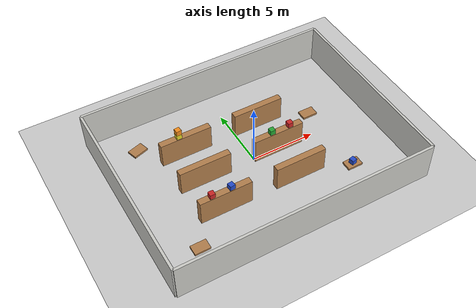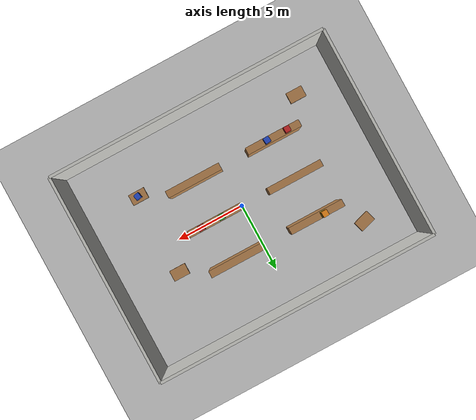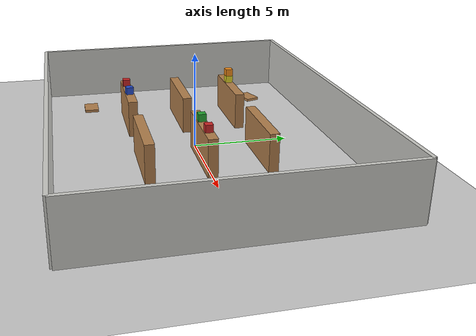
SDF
<?xml version="1.0" ?>
<sdf version="1.6">
  <world name="warehouse">

    <!-- ==================== Physics ==================== -->
    <physics type="ode">
      <max_step_size>0.001</max_step_size>
      <real_time_update_rate>1000</real_time_update_rate>
      <real_time_factor>1</real_time_factor>
    </physics>

    <!-- ==================== Sun (slight angle) ==================== -->
    <light name="warehouse_sun" type="directional">
      <cast_shadows>true</cast_shadows>
      <pose>0 0 10 0 0 0</pose>
      <diffuse>0.9 0.9 0.9 1</diffuse>
      <specular>0.3 0.3 0.3 1</specular>
      <attenuation>
        <range>1000</range>
        <constant>0.9</constant>
        <linear>0.01</linear>
        <quadratic>0.001</quadratic>
      </attenuation>
      <direction>-0.3 0.4 -1.0</direction>
    </light>

    <!-- Ambient fill light -->
    <light name="warehouse_ambient" type="point">
      <pose>0 0 8 0 0 0</pose>
      <diffuse>0.4 0.4 0.4 1</diffuse>
      <specular>0.1 0.1 0.1 1</specular>
      <attenuation>
        <range>50</range>
        <constant>0.5</constant>
        <linear>0.01</linear>
        <quadratic>0.001</quadratic>
      </attenuation>
    </light>

    <!-- ==================== Ground Plane ==================== -->
    <model name="ground_plane">
      <static>true</static>
      <link name="link">
        <collision name="collision">
          <geometry>
            <plane>
              <normal>0 0 1</normal>
              <size>100 100</size>
            </plane>
          </geometry>
          <surface>
            <friction>
              <ode>
                <mu>100</mu>
                <mu2>50</mu2>
              </ode>
            </friction>
          </surface>
        </collision>
        <visual name="visual">
          <geometry>
            <plane>
              <normal>0 0 1</normal>
              <size>100 100</size>
            </plane>
          </geometry>
          <material>
            <script>
              <uri>file://media/materials/scripts/gazebo.material</uri>
              <name>Gazebo/Concrete</name>
            </script>
          </material>
        </visual>
      </link>
    </model>

    <!-- ==================== Warehouse Walls (20m x 15m, 3m tall, 0.2m thick) ==================== -->
    <!-- North wall (along +Y) -->
    <model name="wall_north">
      <static>true</static>
      <pose>0 7.5 1.5 0 0 0</pose>
      <link name="link">
        <collision name="collision">
          <geometry>
            <box><size>20 0.2 3</size></box>
          </geometry>
        </collision>
        <visual name="visual">
          <geometry>
            <box><size>20 0.2 3</size></box>
          </geometry>
          <material>
            <script>
              <uri>file://media/materials/scripts/gazebo.material</uri>
              <name>Gazebo/CeilingTiled</name>
            </script>
          </material>
        </visual>
      </link>
    </model>

    <!-- South wall (along -Y) -->
    <model name="wall_south">
      <static>true</static>
      <pose>0 -7.5 1.5 0 0 0</pose>
      <link name="link">
        <collision name="collision">
          <geometry>
            <box><size>20 0.2 3</size></box>
          </geometry>
        </collision>
        <visual name="visual">
          <geometry>
            <box><size>20 0.2 3</size></box>
          </geometry>
          <material>
            <script>
              <uri>file://media/materials/scripts/gazebo.material</uri>
              <name>Gazebo/CeilingTiled</name>
            </script>
          </material>
        </visual>
      </link>
    </model>

    <!-- East wall (along +X) -->
    <model name="wall_east">
      <static>true</static>
      <pose>10 0 1.5 0 0 0</pose>
      <link name="link">
        <collision name="collision">
          <geometry>
            <box><size>0.2 15 3</size></box>
          </geometry>
        </collision>
        <visual name="visual">
          <geometry>
            <box><size>0.2 15 3</size></box>
          </geometry>
          <material>
            <script>
              <uri>file://media/materials/scripts/gazebo.material</uri>
              <name>Gazebo/CeilingTiled</name>
            </script>
          </material>
        </visual>
      </link>
    </model>

    <!-- West wall (along -X) -->
    <model name="wall_west">
      <static>true</static>
      <pose>-10 0 1.5 0 0 0</pose>
      <link name="link">
        <collision name="collision">
          <geometry>
            <box><size>0.2 15 3</size></box>
          </geometry>
        </collision>
        <visual name="visual">
          <geometry>
            <box><size>0.2 15 3</size></box>
          </geometry>
          <material>
            <script>
              <uri>file://media/materials/scripts/gazebo.material</uri>
              <name>Gazebo/CeilingTiled</name>
            </script>
          </material>
        </visual>
      </link>
    </model>

    <!-- ==================== Shelving Racks ==================== -->
    <!-- 3 rows of shelving racks, spaced 3m apart along Y axis -->
    <!-- Each rack: 4m long x 0.5m deep x 2m tall -->

    <!-- Row 1: y = -3 -->
    <model name="shelf_row1_a">
      <static>true</static>
      <pose>-4 -3 1.0 0 0 0</pose>
      <link name="link">
        <collision name="collision">
          <geometry><box><size>4 0.5 2</size></box></geometry>
        </collision>
        <visual name="visual">
          <geometry><box><size>4 0.5 2</size></box></geometry>
          <material>
            <script>
              <uri>file://media/materials/scripts/gazebo.material</uri>
              <name>Gazebo/Wood</name>
            </script>
          </material>
        </visual>
      </link>
    </model>

    <model name="shelf_row1_b">
      <static>true</static>
      <pose>2 -3 1.0 0 0 0</pose>
      <link name="link">
        <collision name="collision">
          <geometry><box><size>4 0.5 2</size></box></geometry>
        </collision>
        <visual name="visual">
          <geometry><box><size>4 0.5 2</size></box></geometry>
          <material>
            <script>
              <uri>file://media/materials/scripts/gazebo.material</uri>
              <name>Gazebo/Wood</name>
            </script>
          </material>
        </visual>
      </link>
    </model>

    <!-- Row 2: y = 0 -->
    <model name="shelf_row2_a">
      <static>true</static>
      <pose>-4 0 1.0 0 0 0</pose>
      <link name="link">
        <collision name="collision">
          <geometry><box><size>4 0.5 2</size></box></geometry>
        </collision>
        <visual name="visual">
          <geometry><box><size>4 0.5 2</size></box></geometry>
          <material>
            <script>
              <uri>file://media/materials/scripts/gazebo.material</uri>
              <name>Gazebo/Wood</name>
            </script>
          </material>
        </visual>
      </link>
    </model>

    <model name="shelf_row2_b">
      <static>true</static>
      <pose>2 0 1.0 0 0 0</pose>
      <link name="link">
        <collision name="collision">
          <geometry><box><size>4 0.5 2</size></box></geometry>
        </collision>
        <visual name="visual">
          <geometry><box><size>4 0.5 2</size></box></geometry>
          <material>
            <script>
              <uri>file://media/materials/scripts/gazebo.material</uri>
              <name>Gazebo/Wood</name>
            </script>
          </material>
        </visual>
      </link>
    </model>

    <!-- Row 3: y = 3 -->
    <model name="shelf_row3_a">
      <static>true</static>
      <pose>-4 3 1.0 0 0 0</pose>
      <link name="link">
        <collision name="collision">
          <geometry><box><size>4 0.5 2</size></box></geometry>
        </collision>
        <visual name="visual">
          <geometry><box><size>4 0.5 2</size></box></geometry>
          <material>
            <script>
              <uri>file://media/materials/scripts/gazebo.material</uri>
              <name>Gazebo/Wood</name>
            </script>
          </material>
        </visual>
      </link>
    </model>

    <model name="shelf_row3_b">
      <static>true</static>
      <pose>2 3 1.0 0 0 0</pose>
      <link name="link">
        <collision name="collision">
          <geometry><box><size>4 0.5 2</size></box></geometry>
        </collision>
        <visual name="visual">
          <geometry><box><size>4 0.5 2</size></box></geometry>
          <material>
            <script>
              <uri>file://media/materials/scripts/gazebo.material</uri>
              <name>Gazebo/Wood</name>
            </script>
          </material>
        </visual>
      </link>
    </model>

    <!-- ==================== Pallets ==================== -->
    <!-- Pallet: 1.2m x 0.8m x 0.15m -->

    <model name="pallet_1">
      <static>true</static>
      <pose>6 -4 0.075 0 0 0</pose>
      <link name="link">
        <collision name="collision">
          <geometry><box><size>1.2 0.8 0.15</size></box></geometry>
        </collision>
        <visual name="visual">
          <geometry><box><size>1.2 0.8 0.15</size></box></geometry>
          <material>
            <script>
              <uri>file://media/materials/scripts/gazebo.material</uri>
              <name>Gazebo/Wood</name>
            </script>
          </material>
        </visual>
      </link>
    </model>

    <model name="pallet_2">
      <static>true</static>
      <pose>6 2 0.075 0 0 0</pose>
      <link name="link">
        <collision name="collision">
          <geometry><box><size>1.2 0.8 0.15</size></box></geometry>
        </collision>
        <visual name="visual">
          <geometry><box><size>1.2 0.8 0.15</size></box></geometry>
          <material>
            <script>
              <uri>file://media/materials/scripts/gazebo.material</uri>
              <name>Gazebo/Wood</name>
            </script>
          </material>
        </visual>
      </link>
    </model>

    <model name="pallet_3">
      <static>true</static>
      <pose>-7 5 0.075 0 0 0.3</pose>
      <link name="link">
        <collision name="collision">
          <geometry><box><size>1.2 0.8 0.15</size></box></geometry>
        </collision>
        <visual name="visual">
          <geometry><box><size>1.2 0.8 0.15</size></box></geometry>
          <material>
            <script>
              <uri>file://media/materials/scripts/gazebo.material</uri>
              <name>Gazebo/Wood</name>
            </script>
          </material>
        </visual>
      </link>
    </model>

    <model name="pallet_4">
      <static>true</static>
      <pose>-7 -5 0.075 0 0 0</pose>
      <link name="link">
        <collision name="collision">
          <geometry><box><size>1.2 0.8 0.15</size></box></geometry>
        </collision>
        <visual name="visual">
          <geometry><box><size>1.2 0.8 0.15</size></box></geometry>
          <material>
            <script>
              <uri>file://media/materials/scripts/gazebo.material</uri>
              <name>Gazebo/Wood</name>
            </script>
          </material>
        </visual>
      </link>
    </model>

    <!-- ==================== Box Stacks on Shelves ==================== -->
    <!-- 0.4m cube boxes placed on top of shelves (shelf top at z=2.0) -->

    <!-- Boxes on shelf_row1_a -->
    <model name="box_stack_1a">
      <static>true</static>
      <pose>-5 -3 2.2 0 0 0</pose>
      <link name="link">
        <collision name="collision">
          <geometry><box><size>0.4 0.4 0.4</size></box></geometry>
        </collision>
        <visual name="visual">
          <geometry><box><size>0.4 0.4 0.4</size></box></geometry>
          <material>
            <script>
              <uri>file://media/materials/scripts/gazebo.material</uri>
              <name>Gazebo/Red</name>
            </script>
          </material>
        </visual>
      </link>
    </model>

    <model name="box_stack_1b">
      <static>true</static>
      <pose>-3.5 -3 2.2 0 0 0.1</pose>
      <link name="link">
        <collision name="collision">
          <geometry><box><size>0.4 0.4 0.4</size></box></geometry>
        </collision>
        <visual name="visual">
          <geometry><box><size>0.4 0.4 0.4</size></box></geometry>
          <material>
            <script>
              <uri>file://media/materials/scripts/gazebo.material</uri>
              <name>Gazebo/Blue</name>
            </script>
          </material>
        </visual>
      </link>
    </model>

    <!-- Boxes on shelf_row2_b -->
    <model name="box_stack_2a">
      <static>true</static>
      <pose>1.5 0 2.2 0 0 0</pose>
      <link name="link">
        <collision name="collision">
          <geometry><box><size>0.4 0.4 0.4</size></box></geometry>
        </collision>
        <visual name="visual">
          <geometry><box><size>0.4 0.4 0.4</size></box></geometry>
          <material>
            <script>
              <uri>file://media/materials/scripts/gazebo.material</uri>
              <name>Gazebo/Green</name>
            </script>
          </material>
        </visual>
      </link>
    </model>

    <model name="box_stack_2b">
      <static>true</static>
      <pose>3 0 2.2 0 0 0</pose>
      <link name="link">
        <collision name="collision">
          <geometry><box><size>0.4 0.4 0.4</size></box></geometry>
        </collision>
        <visual name="visual">
          <geometry><box><size>0.4 0.4 0.4</size></box></geometry>
          <material>
            <script>
              <uri>file://media/materials/scripts/gazebo.material</uri>
              <name>Gazebo/Red</name>
            </script>
          </material>
        </visual>
      </link>
    </model>

    <!-- Stacked double-high box on shelf_row3_a -->
    <model name="box_stack_3a">
      <static>true</static>
      <pose>-4.5 3 2.2 0 0 0</pose>
      <link name="link">
        <collision name="collision">
          <geometry><box><size>0.4 0.4 0.4</size></box></geometry>
        </collision>
        <visual name="visual">
          <geometry><box><size>0.4 0.4 0.4</size></box></geometry>
          <material>
            <script>
              <uri>file://media/materials/scripts/gazebo.material</uri>
              <name>Gazebo/Yellow</name>
            </script>
          </material>
        </visual>
      </link>
    </model>

    <model name="box_stack_3b">
      <static>true</static>
      <pose>-4.5 3 2.6 0 0 0.05</pose>
      <link name="link">
        <collision name="collision">
          <geometry><box><size>0.4 0.4 0.4</size></box></geometry>
        </collision>
        <visual name="visual">
          <geometry><box><size>0.4 0.4 0.4</size></box></geometry>
          <material>
            <script>
              <uri>file://media/materials/scripts/gazebo.material</uri>
              <name>Gazebo/Orange</name>
            </script>
          </material>
        </visual>
      </link>
    </model>

    <!-- Floor-level box near pallet_1 -->
    <model name="box_floor_1">
      <static>true</static>
      <pose>6 -4 0.35 0 0 0.2</pose>
      <link name="link">
        <collision name="collision">
          <geometry><box><size>0.4 0.4 0.4</size></box></geometry>
        </collision>
        <visual name="visual">
          <geometry><box><size>0.4 0.4 0.4</size></box></geometry>
          <material>
            <script>
              <uri>file://media/materials/scripts/gazebo.material</uri>
              <name>Gazebo/Blue</name>
            </script>
          </material>
        </visual>
      </link>
    </model>

  </world>
</sdf>
